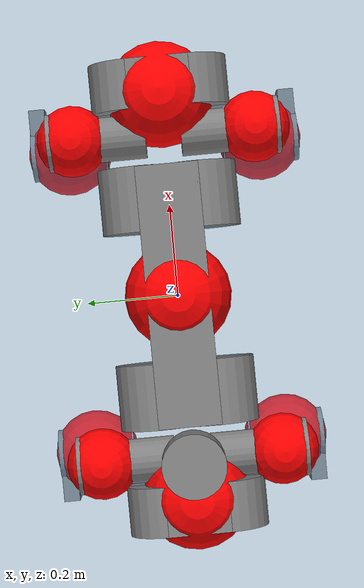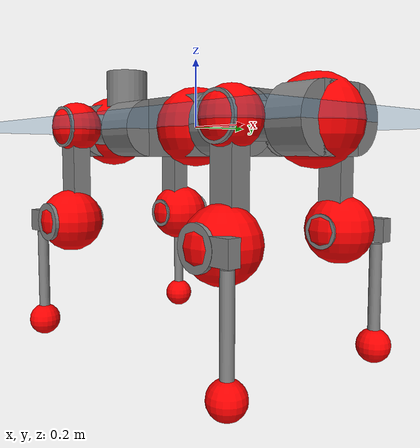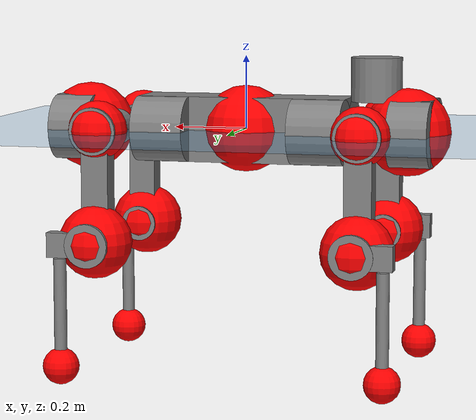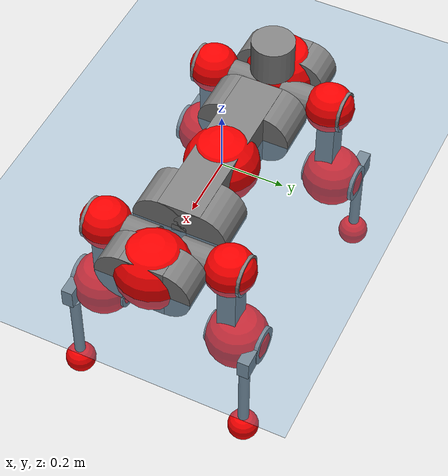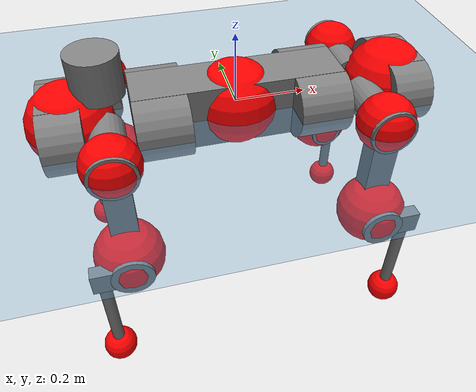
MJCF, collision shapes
<mujoco model="anymal_c">
  <compiler angle="radian" assetdir="assets" balanceinertia="true" inertiafromgeom="false"/>

  <option timestep="0.005" density="1.2" viscosity="2e-05"/>

  <size nkey="1"/>

  <visual>
    <quality shadowsize="8192"/>
    <map shadowclip="0.5"/>
  </visual>

  <default>
    <default class="/">
      <material specular="0" shininess="0.25"/>
      <geom contype="0" conaffinity="0" group="1" solref="-1000 -80"/>
      <site size="0.01 0.005 0.005" group="5"/>
      <general forcelimited="true" forcerange="-80 80" biastype="affine" gainprm="80" biasprm="0 -80 -2"/>
      <default class="anymal_c">
        <joint armature="0.01" damping="0.01" frictionloss="0.1"/>
        <default class="visual">
          <geom type="mesh" group="2"/>
          <default class="visual_zflip"/>
        </default>
        <default class="collision">
          <geom type="cylinder" group="3"/>
          <default class="foot">
            <geom size="0.03 0 0" type="sphere" condim="6" priority="1" friction="0.8 0.02 0.01" solimp="0.015 1 0.03"/>
          </default>
        </default>
      </default>
      <default class="reward_collision_sphere">
        <geom group="5" rgba="1 0 0 1"/>
      </default>
    </default>
  </default>

  <asset>
    <texture type="skybox" colorspace="auto" name="//unnamed_texture_0" builtin="gradient" rgb1="0.95 0.95 0.95" rgb2="0.95 0.95 0.95" width="100" height="600"/>
    <texture type="2d" colorspace="auto" name="texplane" builtin="checker" rgb1="0.345 0.575 0.748" rgb2="0.345 0.575 0.748" markrgb="1 1 1" width="512" height="512"/>
    <texture type="2d" colorspace="linear" name="base" file="base.png"/>
    <texture type="2d" colorspace="linear" name="top_shell" file="top_shell.png"/>
    <texture type="2d" colorspace="linear" name="bottom_shell" file="bottom_shell.png"/>
    <texture type="2d" colorspace="linear" name="remote" file="remote.png"/>
    <texture type="2d" colorspace="linear" name="hatch" file="hatch.png"/>
    <texture type="2d" colorspace="linear" name="handle" file="handle.png"/>
    <texture type="2d" colorspace="linear" name="face" file="face.png"/>
    <texture type="2d" colorspace="linear" name="battery" file="battery.png"/>
    <texture type="2d" colorspace="linear" name="lidar_cage" file="lidar_cage.png"/>
    <texture type="2d" colorspace="linear" name="depth_camera" file="depth_camera.png"/>
    <texture type="2d" colorspace="linear" name="wide_angle_camera" file="wide_angle_camera.png"/>
    <texture type="2d" colorspace="linear" name="lidar" file="lidar.png"/>
    <texture type="2d" colorspace="linear" name="drive" file="drive.png"/>
    <texture type="2d" colorspace="linear" name="hip_l" file="hip_l.png"/>
    <texture type="2d" colorspace="linear" name="shank_l" file="shank_l.png"/>
    <texture type="2d" colorspace="linear" name="foot" file="foot.png"/>
    <texture type="2d" colorspace="linear" name="thigh" file="thigh.png"/>
    <texture type="2d" colorspace="linear" name="shank_r" file="shank_r.png"/>
    <texture type="2d" colorspace="linear" name="hip_r" file="hip_r.png"/>
    <material name="MatPlane" class="/" texture="texplane" texuniform="true" texrepeat="2 2" specular="0.9" shininess="0.5"/>
    <material name="black_plastic" class="/" rgba="0.007 0.007 0.007 1"/>
    <material name="green" class="/" rgba="0.052 0.178 0.033 1"/>
    <material name="red" class="/" rgba="0.178 0.006 0.005 1"/>
    <material name="yellow" class="/" rgba="0.178 0.119 0.006 1"/>
    <material name="lwl" class="/" rgba="0.8 0.8 0.8 1"/>
    <material name="base" class="/" texture="base"/>
    <material name="top_shell" class="/" texture="top_shell"/>
    <material name="bottom_shell" class="/" texture="bottom_shell"/>
    <material name="hip_l" class="/" texture="hip_l"/>
    <material name="thigh" class="/" texture="thigh"/>
    <material name="shank_l" class="/" texture="shank_l"/>
    <material name="foot" class="/" texture="foot"/>
    <material name="hip_r" class="/" texture="hip_r"/>
    <material name="shank" class="/" texture="shank_r"/>
    <material name="hatch" class="/" texture="hatch"/>
    <material name="remote" class="/" texture="remote"/>
    <material name="handle" class="/" texture="handle"/>
    <material name="face" class="/" texture="face"/>
    <material name="depth_camera" class="/" texture="depth_camera"/>
    <material name="wide_angle_camera" class="/" texture="wide_angle_camera"/>
    <material name="battery" class="/" texture="battery"/>
    <material name="lidar_cage" class="/" texture="lidar_cage"/>
    <material name="lidar" class="/" texture="lidar"/>
    <material name="drive" class="/" texture="drive"/>
    <mesh name="base_0" class="/" file="base_0.obj"/>
    <mesh name="base_1" class="/" file="base_1.obj"/>
    <mesh name="base_2" class="/" file="base_2.obj"/>
    <mesh name="base_3" class="/" file="base_3.obj"/>
    <mesh name="base_4" class="/" file="base_4.obj"/>
    <mesh name="base_5" class="/" file="base_5.obj"/>
    <mesh name="top_shell" class="/" file="top_shell.obj"/>
    <mesh name="bottom_shell" class="/" file="bottom_shell.obj"/>
    <mesh name="remote" class="/" file="remote.obj"/>
    <mesh name="handle" class="/" file="handle.obj"/>
    <mesh name="face" class="/" file="face.obj"/>
    <mesh name="wide_angle_camera" class="/" file="wide_angle_camera.obj"/>
    <mesh name="depth_camera" class="/" file="depth_camera.obj"/>
    <mesh name="battery" class="/" file="battery.obj"/>
    <mesh name="lidar_cage" class="/" file="lidar_cage.obj"/>
    <mesh name="lidar" class="/" file="lidar.obj"/>
    <mesh name="drive" class="/" file="drive.obj"/>
    <mesh name="hip_l" class="/" file="hip_l.obj"/>
    <mesh name="thigh" class="/" file="thigh.obj"/>
    <mesh name="shank_l" class="/" file="shank_l.obj"/>
    <mesh name="foot" class="/" file="foot.obj"/>
    <mesh name="hip_r" class="/" file="hip_r.obj"/>
    <mesh name="hatch" class="/" file="hatch.obj"/>
    <mesh name="shank_r" class="/" file="shank_r.obj"/>
  </asset>

  <worldbody>
    <geom name="floor" class="/" size="100 100 0.125" type="plane" group="0" material="MatPlane"/>
    <light name="toplight_shadow" class="/" pos="0 0 5" dir="0.0990148 0.0990148 -0.990148" type="directional" ambient="0.04 0.04 0.04" diffuse="0.55 0.55 0.55" specular="0.12 0.12 0.12"/>
    <light name="toplight_fill" class="/" pos="0 0 5" dir="0.0990148 0.0990148 -0.990148" type="directional" castshadow="false" ambient="0.04 0.04 0.04" diffuse="0.3 0.3 0.3" specular="0.08 0.08 0.08"/>
    <body name="trunk" childclass="anymal_c" pos="0.000262332 -0.000654142 0.00104202" quat="1 -0.000186148 -0.00026462 0.000115185">
      <inertial pos="0.00220835 -0.00254736 0.0519746" quat="0.499964 0.499854 0.500067 0.500115" mass="17.8793" diaginertia="0.569523 0.380141 0.275034"/>
      <joint name="//unnamed_joint_0" type="free" armature="0" damping="0" frictionloss="0"/>
      <geom name="//unnamed_geom_1" class="visual" material="green" mesh="base_0"/>
      <geom name="//unnamed_geom_2" class="visual" material="yellow" mesh="base_1"/>
      <geom name="//unnamed_geom_3" class="visual" material="red" mesh="base_2"/>
      <geom name="//unnamed_geom_4" class="visual" material="black_plastic" mesh="base_3"/>
      <geom name="//unnamed_geom_5" class="visual" material="lwl" mesh="base_4"/>
      <geom name="//unnamed_geom_6" class="visual" material="base" mesh="base_5"/>
      <geom name="trunk_1" class="collision" size="0.285513 0.0689169 0.0886074" type="box"/>
      <geom name="trunk_2" class="collision" size="0.0886074 0.0713782" pos="0.215229 0.063909 0" quat="0.707107 0 0.707107 0"/>
      <geom name="trunk_3" class="collision" size="0.0886074 0.0713782" pos="-0.215229 0.063909 0" quat="0.707107 0 0.707107 0"/>
      <geom name="trunk_4" class="collision" size="0.0886074 0.0713782" pos="0.215229 -0.063909 0" quat="0.707107 0 0.707107 0"/>
      <geom name="trunk_5" class="collision" size="0.0886074 0.0713782" pos="-0.215229 -0.063909 0" quat="0.707107 0 0.707107 0"/>
      <geom name="//unnamed_geom_12" class="visual" material="top_shell" mesh="top_shell"/>
      <geom name="//unnamed_geom_13" class="visual" material="bottom_shell" mesh="bottom_shell"/>
      <geom name="//unnamed_geom_14" class="visual" material="remote" mesh="remote"/>
      <geom name="//unnamed_geom_15" class="visual" material="handle" mesh="handle"/>
      <geom name="//unnamed_geom_16" class="visual" pos="0.410173 0 0" quat="1 0 0 0" material="face" mesh="face"/>
      <geom name="trunk_6" class="collision" size="0.054149 0.0689169 0.0886074" pos="0.464598 0 0" type="box"/>
      <geom name="//unnamed_geom_18" class="collision" size="0.0886074 0.054149" pos="0.464598 0.063909 0" quat="0.707107 0 0.707107 0"/>
      <geom name="//unnamed_geom_19" class="collision" size="0.0886074 0.054149" pos="0.464598 -0.063909 0" quat="0.707107 0 0.707107 0"/>
      <geom name="//unnamed_geom_20" class="visual" pos="0.456833 0 -0.0311574" quat="0.965926 0 0.258819 0" material="depth_camera" mesh="depth_camera"/>
      <geom name="//unnamed_geom_21" class="visual" pos="0.507644 0 0.015734" material="wide_angle_camera" mesh="wide_angle_camera"/>
      <geom name="//unnamed_geom_22" class="visual_zflip" pos="-0.410173 0 0" quat="0 0 0 1" material="face" mesh="face"/>
      <geom name="trunk_7" class="collision" size="0.054149 0.0689169 0.0886074" pos="-0.464598 0 0" quat="0 0 0 1" type="box"/>
      <geom name="//unnamed_geom_24" class="collision" size="0.0886074 0.054149" pos="-0.464598 -0.063909 0" quat="0 -0.707107 0 0.707107"/>
      <geom name="//unnamed_geom_25" class="collision" size="0.0886074 0.054149" pos="-0.464598 0.063909 0" quat="0 -0.707107 0 0.707107"/>
      <geom name="//unnamed_geom_26" class="visual" pos="-0.456833 0 -0.0311574" quat="0 -0.258819 0 0.965926" material="depth_camera" mesh="depth_camera"/>
      <geom name="//unnamed_geom_27" class="visual_zflip" pos="-0.507644 0 0.015734" quat="0 0 0 1" material="wide_angle_camera" mesh="wide_angle_camera"/>
      <geom name="//unnamed_geom_28" class="visual" material="battery" mesh="battery"/>
      <geom name="//unnamed_geom_29" class="visual" pos="0 0.0688046 0.0300654" quat="0.683013 -0.183013 0.183013 0.683013" material="depth_camera" mesh="depth_camera"/>
      <geom name="//unnamed_geom_30" class="visual" pos="0 -0.0688046 0.0300654" quat="0.683013 0.183013 0.183013 -0.683013" material="depth_camera" mesh="depth_camera"/>
      <geom name="//unnamed_geom_31" class="visual" pos="-0.3602 0 0.0772511" quat="1 0 0 0" material="lidar_cage" mesh="lidar_cage"/>
      <geom name="trunk_8" class="collision" size="0.0689169 0.0590716" pos="-0.3602 0 0.140313"/>
      <geom name="//unnamed_geom_33" class="visual" pos="-0.3602 -3.0084e-05 0.149457" quat="0.707107 0 0 -0.707107" material="lidar" mesh="lidar"/>
      <geom name="//unnamed_geom_34" class="visual" pos="0.296769 0.0949995 -2.38138e-09" quat="0.258819 0.965926 0 0" material="drive" mesh="drive"/>
      <geom name="//unnamed_geom_35" class="visual" pos="0.296769 -0.0949995 2.38138e-09" quat="0.258819 -0.965926 0 0" material="drive" mesh="drive"/>
      <geom name="//unnamed_geom_36" class="visual" pos="-0.296769 0.0949995 2.38138e-09" quat="0 0 0.965926 -0.258819" material="drive" mesh="drive"/>
      <geom name="//unnamed_geom_37" class="visual" pos="-0.296769 -0.0949995 -2.38138e-09" quat="0 0 -0.965926 -0.258819" material="drive" mesh="drive"/>
      <geom name="//unnamed_geom_38" class="visual" pos="0.114789 0 0.0767256" quat="1 0 0 0" material="hatch" mesh="hatch"/>
      <geom name="//unnamed_geom_39" class="reward_collision_sphere" size="0.118143"/>
      <geom name="//unnamed_geom_40" class="reward_collision_sphere" size="0.118143" pos="0.445302 0 0"/>
      <geom name="//unnamed_geom_41" class="reward_collision_sphere" size="0.118143" pos="-0.445302 0 0"/>
      <site name="imu" pos="0.244001 0.0101537 0.0511428" size="0.00984527"/>
      <camera name="track" pos="0 -1.82597 0" quat="0.707107 0.707107 0 0" mode="trackcom"/>
      <camera name="ego_camera" pos="0.445302 0 -0.0420414" quat="-0.5 -0.5 0.5 0.5"/>
      <body name="LF_HIP" pos="0.297548 0.0951171 -0.000414136" quat="0.258896 0.965905 -4.28544e-05 0.00030756">
        <inertial pos="0.0560408 -0.0152349 -0.00856666" quat="-0.122018 0.702402 -0.138325 0.687466" mass="2.63346" diaginertia="0.00547842 0.00312036 0.00416706"/>
        <joint name="LF_HAA" pos="0 0 0" axis="0.999997 -0.0022337 -0.00107216" range="-0.712411 0.499167" armature="0.00951981" damping="0.0126112" frictionloss="0.100087"/>
        <geom name="//unnamed_geom_42" class="visual" pos="0 -0.000140086 2.3009e-05" quat="0.258819 -0.965926 0 0" material="hip_l" mesh="hip_l"/>
        <geom name="//unnamed_geom_43" class="visual" pos="0.0592746 -0.0708647 -0.0419348" quat="0.183013 -0.683013 0.683013 0.183013" material="drive" mesh="drive"/>
        <geom name="//unnamed_geom_44" class="collision" size="0.0492263 0.0689169" pos="0.0592746 -0.0109191 -0.0072574" quat="-0.353553 -0.612372 0.612372 -0.353553"/>
        <body name="LF_THIGH" pos="0.0613016 -0.0671355 -0.0456168" quat="0.181969 -0.682787 0.683568 0.182825">
          <inertial pos="0.0309813 0.00261332 -0.257978" quat="0.993313 -0.00712183 -0.0823767 0.0805803" mass="2.90852" diaginertia="0.0278589 0.019461 0.00533998"/>
          <joint name="LF_HFE" pos="0 0 0" axis="0.999984 -0.00557619 -0.000451129" range="-3.16138 3.0926" armature="0.0110872" damping="0.00840336" frictionloss="0.0989197"/>
          <geom name="//unnamed_geom_45" class="visual" pos="0.00152353 2.40073e-06 0" quat="0.707107 0 0 -0.707107" material="thigh" mesh="thigh"/>
          <geom name="//unnamed_geom_46" class="collision" size="0.0639942 0.0393811" pos="0.0395824 0 0" quat="0.5 0.5 -0.5 -0.5"/>
          <geom name="//unnamed_geom_47" class="collision" size="0.0369198 0.0295358 0.139127" pos="0.0296868 0 -0.148526" quat="0.707107 0 0 -0.707107" type="box"/>
          <geom name="//unnamed_geom_48" class="visual" pos="0.0992529 0 -0.299545" quat="1 0 0 0" material="drive" mesh="drive"/>
          <geom name="//unnamed_geom_49" class="collision" size="0.0492263 0.0689169" pos="0.0299837 0 -0.299545" quat="0.707107 0 0.707107 0"/>
          <geom name="//unnamed_geom_50" class="reward_collision_sphere" size="0.0787622" pos="0.024739 0 0"/>
          <body name="LF_SHANK" pos="0.0993913 -0.000328065 -0.298672" quat="1 0.000109008 8.09269e-05 -0.000281255">
            <inertial pos="0.00333334 -0.0562153 -0.0864015" quat="0.992685 -0.118696 -0.00318907 -0.0218408" mass="0.551472" diaginertia="0.00958509 0.00599542 0.00142041"/>
            <joint name="LF_KFE" pos="0 0 0" axis="0.999997 -0.000990856 -0.00213734" range="-3.08961 3.16846" armature="0.0099257" damping="0" frictionloss="0.0932993"/>
            <geom name="//unnamed_geom_51" class="visual" pos="0.00049679 0.00264891 0" quat="0.707107 0 0 -0.707107" material="shank_l" mesh="shank_l"/>
            <geom name="LF_kfe_act" class="collision" size="0.0590716 0.0196905" pos="0.0197912 0 0" quat="0.5 0.5 -0.5 -0.5"/>
            <geom name="//unnamed_geom_53" class="collision" size="0.0566093 0.0332278 0.018706" pos="0.0197912 -0.0524957 0" quat="0.5 0.5 -0.5 -0.5" type="box"/>
            <geom name="//unnamed_geom_54" class="visual" pos="0.0129136 -0.0794434 -0.355218" quat="0.382683 0 0 -0.92388" material="foot" mesh="foot"/>
            <geom name="LF_calf" class="collision" size="0.0172292 0.139066" pos="0.0129138 -0.0802971 -0.177609" quat="0.707107 0 0 -0.707107"/>
            <geom name="LF_foot" class="foot" size="0.0305965" pos="0.0129138 -0.0802971 -0.33157" quat="0.707107 0 0 -0.707107"/>
            <geom name="//unnamed_geom_57" class="reward_collision_sphere" size="0.0984527" pos="-0.049478 0 0"/>
            <geom name="//unnamed_geom_58" class="reward_collision_sphere" size="0.0492263" pos="0.0129138 -0.0802971 -0.33157"/>
            <site name="LF_foot" class="foot" pos="0.0129138 -0.0802971 -0.33157" quat="0.707107 0 0 -0.707107" size="0.00984527"/>
          </body>
        </body>
      </body>
      <body name="RF_HIP" pos="0.294808 -0.0947236 -0.0025026" quat="0.25907 -0.965859 -0.000452056 6.46948e-05">
        <inertial pos="0.0560499 0.0134552 -0.00818936" quat="0.126956 0.682272 0.133433 0.707518" mass="2.67835" diaginertia="0.00548134 0.00311728 0.00415579"/>
        <joint name="RF_HAA" pos="0 0 0" axis="0.999998 0.00127949 -0.00134375" range="-0.482477 0.761579" armature="0.0102" damping="0.0135103" frictionloss="0.0935047"/>
        <geom name="//unnamed_geom_59" class="visual" pos="0 0.000140085 2.30089e-05" quat="0.258819 0.965926 0 0" material="hip_r" mesh="hip_r"/>
        <geom name="//unnamed_geom_60" class="visual" pos="0.0592746 0.0708647 -0.0419348" quat="0.183013 0.683013 0.683013 -0.183013" material="drive" mesh="drive"/>
        <geom name="//unnamed_geom_61" class="collision" size="0.0492263 0.0689169" pos="0.0592746 0.0109191 -0.0072574" quat="-0.353553 0.612372 0.612372 0.353553"/>
        <body name="RF_THIGH" pos="0.0604528 0.0682263 -0.0465085" quat="0.183126 0.683029 0.68299 -0.182923">
          <inertial pos="0.0302465 -0.000629063 -0.255673" quat="0.992949 -0.000337397 -0.0804922 0.0870264" mass="2.88584" diaginertia="0.0283967 0.0189002 0.00535064"/>
          <joint name="RF_HFE" pos="0 0 0" axis="0.999989 -0.00465416 0.000160097" stiffness="0.0148214" range="-3.14074 3.11872" armature="0.0088914" damping="0.0199336" frictionloss="0.0968431"/>
          <geom name="//unnamed_geom_62" class="visual" pos="0.00152353 2.40073e-06 0" quat="0.707107 0 0 -0.707107" material="thigh" mesh="thigh"/>
          <geom name="//unnamed_geom_63" class="collision" size="0.0639942 0.0393811" pos="0.0395824 0 0" quat="0.5 0.5 0.5 0.5"/>
          <geom name="//unnamed_geom_64" class="collision" size="0.0369198 0.0295358 0.139127" pos="0.0296868 0 -0.148526" quat="0.707107 0 0 0.707107" type="box"/>
          <geom name="//unnamed_geom_65" class="visual" pos="0.0992529 0 -0.299545" quat="1 0 0 0" material="drive" mesh="drive"/>
          <geom name="//unnamed_geom_66" class="collision" size="0.0492263 0.0689169" pos="0.0299837 0 -0.299545" quat="0.707107 0 0.707107 0"/>
          <geom name="//unnamed_geom_67" class="reward_collision_sphere" size="0.0787622" pos="0.024739 0 0"/>
          <body name="RF_SHANK" pos="0.10055 -0.000647848 -0.297442" quat="1 0.000127414 -0.000260375 -0.000139297">
            <inertial pos="0.00535127 0.0565697 -0.0842279" quat="0.992653 0.118858 -0.000860246 0.0226339" mass="0.579603" diaginertia="0.0100623 0.00611302 0.0014764"/>
            <joint name="RF_KFE" pos="0 0 0" axis="0.999997 -0.001386 0.0022084" range="-3.15392 3.11802" armature="0.00990738" damping="0" frictionloss="0.103316"/>
            <geom name="//unnamed_geom_68" class="visual" pos="0.000496787 -0.0026489 0" quat="0.707107 0 0 0.707107" material="shank" mesh="shank_r"/>
            <geom name="RF_kfe_act" class="collision" size="0.0590716 0.0196905" pos="0.0197912 0 0" quat="0.5 0.5 0.5 0.5"/>
            <geom name="//unnamed_geom_70" class="collision" size="0.0566093 0.0332278 0.018706" pos="0.0197912 0.0524957 0" quat="0.5 0.5 0.5 0.5" type="box"/>
            <geom name="//unnamed_geom_71" class="visual" pos="0.0129139 0.0794434 -0.355218" quat="0.382683 0 0 0.92388" material="foot" mesh="foot"/>
            <geom name="RF_calf" class="collision" size="0.0172292 0.139066" pos="0.0129138 0.0802971 -0.177609" quat="0.707107 0 0 0.707107"/>
            <geom name="RF_foot" class="foot" size="0.0265198" pos="0.0129138 0.0802971 -0.33157" quat="0.707107 0 0 0.707107"/>
            <geom name="//unnamed_geom_74" class="reward_collision_sphere" size="0.0984527" pos="-0.049478 0 0"/>
            <geom name="//unnamed_geom_75" class="reward_collision_sphere" size="0.0492263" pos="0.0129138 0.0802971 -0.33157"/>
            <site name="RF_foot" class="foot" pos="0.0129138 0.0802971 -0.33157" quat="0.707107 0 0 0.707107" size="0.00984527"/>
          </body>
        </body>
      </body>
      <body name="LH_HIP" pos="-0.296354 0.09498 0.0012279" quat="-0.000326595 5.77461e-05 0.96585 -0.259101">
        <inertial pos="0.0556808 0.014599 -0.0085639" quat="0.134454 0.68147 0.125494 0.708358" mass="2.59875" diaginertia="0.0056589 0.00317427 0.0042681"/>
        <joint name="LH_HAA" pos="0 0 0" axis="0.999983 0.00230801 -0.00543813" stiffness="4.2999e-05" range="-0.459281 0.74332" armature="0.0101893" damping="0.00965144" frictionloss="0.105067"/>
        <geom name="//unnamed_geom_76" class="visual" pos="0 0.000140085 2.30089e-05" quat="-0.258819 -0.965926 0 0" material="hip_r" mesh="hip_r"/>
        <geom name="//unnamed_geom_77" class="visual" pos="0.0592746 0.0708647 -0.0419348" quat="0.183013 0.683013 0.683013 -0.183013" material="drive" mesh="drive"/>
        <geom name="//unnamed_geom_78" class="collision" size="0.0492263 0.0689169" pos="0.0592746 0.0109191 -0.0072574" quat="-0.353553 0.612372 0.612372 0.353553"/>
        <body name="LH_THIGH" pos="0.0587397 0.0675377 -0.0438" quat="0.183658 0.682999 0.682558 -0.184109">
          <inertial pos="0.0308443 0.00249046 -0.259099" quat="0.993532 -0.00481814 -0.0758931 0.0843238" mass="2.84447" diaginertia="0.0287961 0.0189887 0.00551239"/>
          <joint name="LH_HFE" pos="0 0 0" axis="0.999918 -0.00434684 -0.0120068" stiffness="0.00126767" range="-3.14398 3.13178" armature="0.010113" damping="0.0154512" frictionloss="0.098745"/>
          <geom name="//unnamed_geom_79" class="visual" pos="0.00152353 2.40073e-06 0" quat="0.707107 0 0 -0.707107" material="thigh" mesh="thigh"/>
          <geom name="//unnamed_geom_80" class="collision" size="0.0639942 0.0393811" pos="0.0395824 0 0" quat="0.5 0.5 -0.5 -0.5"/>
          <geom name="//unnamed_geom_81" class="collision" size="0.0369198 0.0295358 0.139127" pos="0.0296868 0 -0.148526" quat="0.707107 0 0 -0.707107" type="box"/>
          <geom name="//unnamed_geom_82" class="visual" pos="0.0992529 0 -0.299545" quat="1 0 0 0" material="drive" mesh="drive"/>
          <geom name="//unnamed_geom_83" class="collision" size="0.0492263 0.0689169" pos="0.0299837 0 -0.299545" quat="0.707107 0 0.707107 0"/>
          <geom name="//unnamed_geom_84" class="reward_collision_sphere" size="0.0787622" pos="0.024739 0 0"/>
          <body name="LH_SHANK" pos="0.0999711 -0.00145144 -0.299775" quat="1 -9.60526e-05 0.000329343 -0.000183787">
            <inertial pos="0.00517328 0.0574412 -0.0852739" quat="0.992814 0.116433 0.000466977 0.027626" mass="0.567497" diaginertia="0.00950428 0.00576611 0.00140738"/>
            <joint name="LH_KFE" pos="0 0 0" axis="0.999999 -0.000132951 0.0014929" stiffness="0.00245257" range="-3.09523 3.13835" armature="0.0110886" damping="0.013394" frictionloss="0.0961155"/>
            <geom name="//unnamed_geom_85" class="visual" pos="0.000496787 -0.0026489 0" quat="-0.707107 0 0 -0.707107" material="shank" mesh="shank_r"/>
            <geom name="LH_kfe_act" class="collision" size="0.0590716 0.0196905" pos="0.0197912 0 0" quat="0.5 0.5 -0.5 -0.5"/>
            <geom name="//unnamed_geom_87" class="collision" size="0.0566093 0.0332278 0.018706" pos="0.0197912 0.0524957 0" quat="0.5 0.5 -0.5 -0.5" type="box"/>
            <geom name="//unnamed_geom_88" class="visual" pos="0.0129139 0.0794434 -0.355218" quat="-0.382683 0 0 -0.92388" material="foot" mesh="foot"/>
            <geom name="LH_calf" class="collision" size="0.0172292 0.139066" pos="0.0129138 0.0802971 -0.177609" quat="0.707107 0 0 -0.707107"/>
            <geom name="LH_foot" class="foot" size="0.0302105" pos="0.0129138 0.0802971 -0.33157" quat="0.707107 0 0 -0.707107"/>
            <geom name="//unnamed_geom_91" class="reward_collision_sphere" size="0.0984527" pos="-0.049478 0 0"/>
            <geom name="//unnamed_geom_92" class="reward_collision_sphere" size="0.0492263" pos="0.0129138 0.0802971 -0.33157"/>
            <site name="LH_foot" class="foot" pos="0.0129138 0.0802971 -0.33157" quat="0.707107 0 0 -0.707107" size="0.00984527"/>
          </body>
        </body>
      </body>
      <body name="RH_HIP" pos="-0.299171 -0.0961919 0.000111513" quat="-0.00130956 -6.60578e-05 -0.965783 -0.259346">
        <inertial pos="0.0565625 -0.0130532 -0.00881452" quat="-0.12811 0.71092 -0.134701 0.67826" mass="2.66911" diaginertia="0.00559215 0.003095 0.00437806"/>
        <joint name="RH_HAA" pos="0 0 0" axis="0.999993 -0.00370369 0.000979998" range="-0.70966 0.50955" armature="0.0109148" damping="0.00946317" frictionloss="0.0998525"/>
        <geom name="//unnamed_geom_93" class="visual" pos="0 -0.000140086 2.3009e-05" quat="-0.258819 0.965926 0 0" material="hip_l" mesh="hip_l"/>
        <geom name="//unnamed_geom_94" class="visual" pos="0.0592746 -0.0708647 -0.0419348" quat="-0.183013 0.683013 -0.683013 -0.183013" material="drive" mesh="drive"/>
        <geom name="//unnamed_geom_95" class="collision" size="0.0492263 0.0689169" pos="0.0592746 -0.0109191 -0.0072574" quat="0.353553 0.612372 -0.612372 0.353553"/>
        <body name="RH_THIGH" pos="0.0584419 -0.0648607 -0.0440228" quat="-0.183409 0.683048 -0.682803 -0.183266">
          <inertial pos="0.0304255 -0.00132456 -0.258577" quat="0.993139 -0.00548681 -0.0807994 0.0843553" mass="2.86374" diaginertia="0.0282871 0.0190121 0.0052762"/>
          <joint name="RH_HFE" pos="0 0 0" axis="0.999996 0.0027207 0.000134502" stiffness="0.00264657" range="-3.12898 3.19401" armature="0.00864467" damping="0.016434" frictionloss="0.09577"/>
          <geom name="//unnamed_geom_96" class="visual" pos="0.00152353 2.40073e-06 0" quat="0.707107 0 0 -0.707107" material="thigh" mesh="thigh"/>
          <geom name="//unnamed_geom_97" class="collision" size="0.0639942 0.0393811" pos="0.0395824 0 0" quat="0.5 0.5 0.5 0.5"/>
          <geom name="//unnamed_geom_98" class="collision" size="0.0369198 0.0295358 0.139127" pos="0.0296868 0 -0.148526" quat="0.707107 0 0 0.707107" type="box"/>
          <geom name="//unnamed_geom_99" class="visual" pos="0.0992529 0 -0.299545" quat="1 0 0 0" material="drive" mesh="drive"/>
          <geom name="//unnamed_geom_100" class="collision" size="0.0492263 0.0689169" pos="0.0299837 0 -0.299545" quat="0.707107 0 0.707107 0"/>
          <geom name="//unnamed_geom_101" class="reward_collision_sphere" size="0.0787622" pos="0.024739 0 0"/>
          <body name="RH_SHANK" pos="0.0989846 0.000184046 -0.299758" quat="1 -4.94035e-05 -0.000209676 5.32167e-05">
            <inertial pos="0.00555087 -0.0561842 -0.0845962" quat="0.99296 -0.115667 -0.00104854 -0.0255054" mass="0.567017" diaginertia="0.00953883 0.00583533 0.00142956"/>
            <joint name="RH_KFE" pos="0 0 0" axis="1 0.000194131 -0.000145728" range="-3.0821 3.12536" armature="0.00955257" damping="0.0117612" frictionloss="0.0978417"/>
            <geom name="//unnamed_geom_102" class="visual" pos="0.00049679 0.00264891 0" quat="0.707107 0 0 -0.707107" material="shank_l" mesh="shank_l"/>
            <geom name="RH_kfe_act" class="collision" size="0.0590716 0.0196905" pos="0.0197912 0 0" quat="0.5 0.5 0.5 0.5"/>
            <geom name="//unnamed_geom_104" class="collision" size="0.0566093 0.0332278 0.018706" pos="0.0197912 -0.0524957 0" quat="0.5 0.5 0.5 0.5" type="box"/>
            <geom name="//unnamed_geom_105" class="visual" pos="0.0129136 -0.0794434 -0.355218" quat="0.382683 0 0 -0.92388" material="foot" mesh="foot"/>
            <geom name="RH_calf" class="collision" size="0.0172292 0.139066" pos="0.0129138 -0.0802971 -0.177609" quat="0.707107 0 0 0.707107"/>
            <geom name="RH_foot" class="foot" size="0.0301359" pos="0.0129138 -0.0802971 -0.33157" quat="0.707107 0 0 0.707107"/>
            <geom name="//unnamed_geom_108" class="reward_collision_sphere" size="0.0984527" pos="-0.049478 0 0"/>
            <geom name="//unnamed_geom_109" class="reward_collision_sphere" size="0.0492263" pos="0.0129138 -0.0802971 -0.33157"/>
            <site name="RH_foot" class="foot" pos="0.0129138 -0.0802971 -0.33157" quat="0.707107 0 0 0.707107" size="0.00984527"/>
          </body>
        </body>
      </body>
    </body>
  </worldbody>

  <contact>
    <pair class="/" geom1="floor" geom2="LF_foot" name="//unnamed_contact_0"/>
    <pair class="/" geom1="floor" geom2="RF_foot" name="//unnamed_contact_1"/>
    <pair class="/" geom1="floor" geom2="LH_foot" name="//unnamed_contact_2"/>
    <pair class="/" geom1="floor" geom2="RH_foot" name="//unnamed_contact_3"/>
  </contact>

  <actuator>
    <general name="LF_HAA" class="/" joint="LF_HAA" forcerange="-78.6752 78.6752" gainprm="79.7791" biasprm="0 -79.7791 -1.90633"/>
    <general name="LF_HFE" class="/" joint="LF_HFE" forcerange="-78.818 78.818" gainprm="79.7791" biasprm="0 -79.7791 -1.90633"/>
    <general name="LF_KFE" class="/" joint="LF_KFE" forcerange="-80.5701 80.5701" gainprm="79.7791" biasprm="0 -79.7791 -1.90633"/>
    <general name="RF_HAA" class="/" joint="RF_HAA" forcerange="-80.9003 80.9003" gainprm="79.7791" biasprm="0 -79.7791 -1.90633"/>
    <general name="RF_HFE" class="/" joint="RF_HFE" forcerange="-80.5087 80.5087" gainprm="79.7791" biasprm="0 -79.7791 -1.90633"/>
    <general name="RF_KFE" class="/" joint="RF_KFE" forcerange="-75.7263 75.7263" gainprm="79.7791" biasprm="0 -79.7791 -1.90633"/>
    <general name="LH_HAA" class="/" joint="LH_HAA" forcerange="-82.0487 82.0487" gainprm="79.7791" biasprm="0 -79.7791 -1.90633"/>
    <general name="LH_HFE" class="/" joint="LH_HFE" forcerange="-78.7161 78.7161" gainprm="79.7791" biasprm="0 -79.7791 -1.90633"/>
    <general name="LH_KFE" class="/" joint="LH_KFE" forcerange="-76.3281 76.3281" gainprm="79.7791" biasprm="0 -79.7791 -1.90633"/>
    <general name="RH_HAA" class="/" joint="RH_HAA" forcerange="-81.2289 81.2289" gainprm="79.7791" biasprm="0 -79.7791 -1.90633"/>
    <general name="RH_HFE" class="/" joint="RH_HFE" forcerange="-76.3027 76.3027" gainprm="79.7791" biasprm="0 -79.7791 -1.90633"/>
    <general name="RH_KFE" class="/" joint="RH_KFE" forcerange="-85.3005 85.3005" gainprm="79.7791" biasprm="0 -79.7791 -1.90633"/>
  </actuator>

  <sensor>
    <gyro site="imu" name="imu_angular_velocity"/>
    <velocimeter site="imu" name="imu_linear_velocity"/>
    <framelinvel objtype="site" objname="LF_foot" name="LF_foot_global_linear_velocity"/>
    <framelinvel objtype="site" objname="RF_foot" name="RF_foot_global_linear_velocity"/>
    <framelinvel objtype="site" objname="LH_foot" name="LH_foot_global_linear_velocity"/>
    <framelinvel objtype="site" objname="RH_foot" name="RH_foot_global_linear_velocity"/>
  </sensor>

  <keyframe>
    <key name="home" qpos="0 0 0.55 1 0 0 0 0 0.4 -0.8 0 -0.4 0.8 0 -0.4 0.8 0 0.4 -0.8"/>
  </keyframe>
</mujoco>
